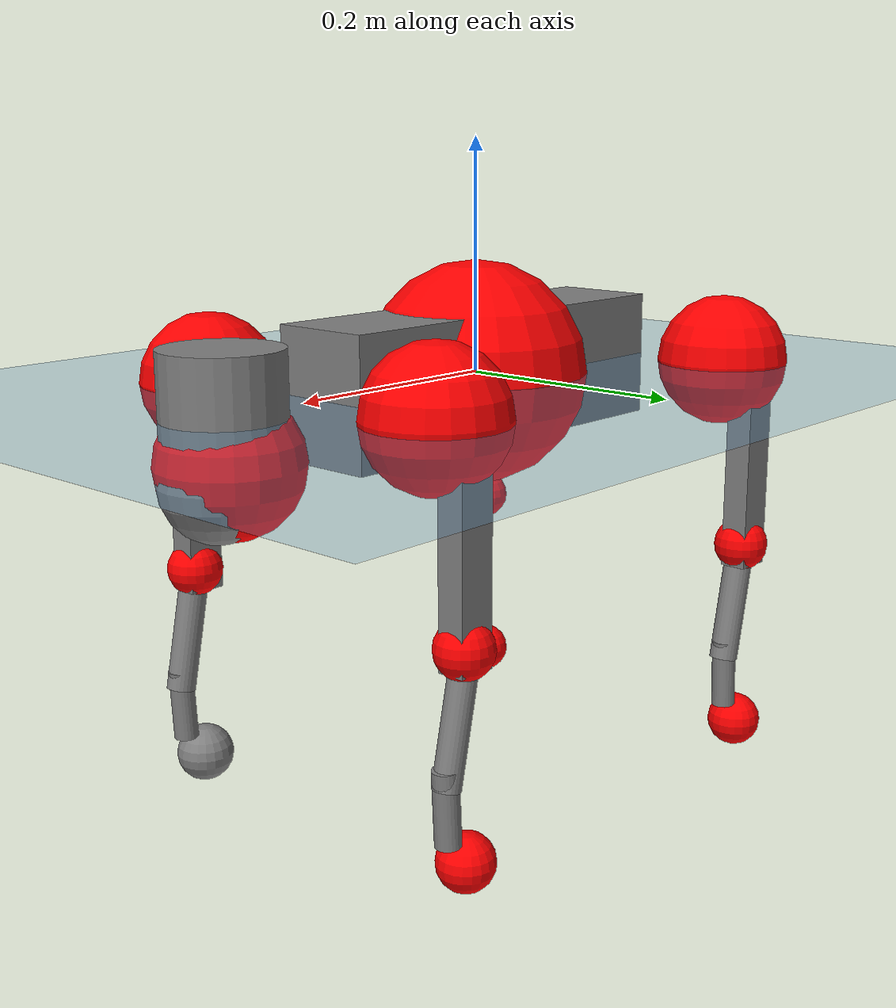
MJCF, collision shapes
<mujoco model="go2">
  <compiler angle="radian" assetdir="assets" balanceinertia="true" inertiafromgeom="false"/>

  <option timestep="0.005" density="1.2" viscosity="2e-05"/>

  <size nkey="1"/>

  <visual>
    <quality shadowsize="8192"/>
    <map shadowclip="0.5"/>
  </visual>

  <default>
    <default class="/">
      <geom contype="0" conaffinity="0" group="1" solref="-1000 -80"/>
      <site size="0.01 0.005 0.005" group="5"/>
      <general forcelimited="true" biastype="affine" gainprm="20" biasprm="0 -20 -0.5"/>
      <default class="go2">
        <joint armature="0.01" damping="0.01" frictionloss="0.2"/>
        <geom condim="1" margin="0.001"/>
        <default class="visual">
          <geom type="mesh" group="2"/>
        </default>
        <default class="collision">
          <geom group="3"/>
          <default class="foot">
            <geom size="0.022 0 0" condim="6" priority="1" friction="0.8 0.02 0.01" solimp="0.015 1 0.022"/>
          </default>
        </default>
        <default class="reward_collision_sphere">
          <geom group="5" rgba="1 0 0 1"/>
        </default>
      </default>
    </default>
  </default>

  <asset>
    <texture type="skybox" colorspace="auto" name="//unnamed_texture_0" builtin="gradient" rgb1="0.95 0.95 0.95" rgb2="0.95 0.95 0.95" width="100" height="600"/>
    <texture type="2d" colorspace="auto" name="texplane" builtin="checker" rgb1="0.345 0.575 0.748" rgb2="0.345 0.575 0.748" markrgb="1 1 1" width="512" height="512"/>
    <material name="MatPlane" class="/" texture="texplane" texuniform="true" texrepeat="2 2" specular="0.9"/>
    <material name="metal" class="/" rgba="0.9 0.95 0.95 1"/>
    <material name="black" class="/" rgba="0 0 0 1"/>
    <material name="white" class="/"/>
    <material name="gray" class="/" rgba="0.671705 0.692426 0.77427 1"/>
    <mesh name="base_0" class="/" file="base_0.obj"/>
    <mesh name="base_1" class="/" file="base_1.obj"/>
    <mesh name="base_2" class="/" file="base_2.obj"/>
    <mesh name="base_3" class="/" file="base_3.obj"/>
    <mesh name="base_4" class="/" file="base_4.obj"/>
    <mesh name="hip_0" class="/" file="hip_0.obj"/>
    <mesh name="hip_1" class="/" file="hip_1.obj"/>
    <mesh name="thigh_0" class="/" file="thigh_0.obj"/>
    <mesh name="thigh_1" class="/" file="thigh_1.obj"/>
    <mesh name="thigh_mirror_0" class="/" file="thigh_mirror_0.obj"/>
    <mesh name="thigh_mirror_1" class="/" file="thigh_mirror_1.obj"/>
    <mesh name="calf_0" class="/" file="calf_0.obj"/>
    <mesh name="calf_1" class="/" file="calf_1.obj"/>
    <mesh name="calf_mirror_0" class="/" file="calf_mirror_0.obj"/>
    <mesh name="calf_mirror_1" class="/" file="calf_mirror_1.obj"/>
    <mesh name="foot" class="/" file="foot.obj"/>
  </asset>

  <worldbody>
    <geom name="floor" class="/" size="100 100 0.125" type="plane" group="0" material="MatPlane"/>
    <light name="toplight_shadow" class="/" pos="0 0 5" dir="0.0990148 0.0990148 -0.990148" type="directional" ambient="0.04 0.04 0.04" diffuse="0.55 0.55 0.55" specular="0.12 0.12 0.12"/>
    <light name="toplight_fill" class="/" pos="0 0 5" dir="0.0990148 0.0990148 -0.990148" type="directional" castshadow="false" ambient="0.04 0.04 0.04" diffuse="0.3 0.3 0.3" specular="0.08 0.08 0.08"/>
    <body name="trunk" childclass="go2" pos="-0.0025356 -0.00252208 -0.000462652" quat="0.999999 -0.000251485 -0.00100896 -0.000928314">
      <inertial pos="0.0181414 0.000270801 -0.00493744" quat="0.00054126 0.714352 -0.00260607 0.699782" mass="6.28592" diaginertia="0.0951982 0.173227 0.00912831"/>
      <joint name="//unnamed_joint_0" type="free" armature="0" damping="0" frictionloss="0"/>
      <geom name="//unnamed_geom_1" class="visual" material="black" mesh="base_0"/>
      <geom name="//unnamed_geom_2" class="visual" material="black" mesh="base_1"/>
      <geom name="//unnamed_geom_3" class="visual" material="black" mesh="base_2"/>
      <geom name="//unnamed_geom_4" class="visual" material="white" mesh="base_3"/>
      <geom name="//unnamed_geom_5" class="visual" material="gray" mesh="base_4"/>
      <geom name="trunk_1" class="collision" size="0.18291 0.04546 0.0554272" type="box"/>
      <geom name="trunk_2" class="collision" size="0.0486203 0.0437583" pos="0.278461 0 0.00816756" type="cylinder"/>
      <geom name="trunk_3" class="collision" size="0.0457031" pos="0.286277 0 -0.0490053"/>
      <geom name="//unnamed_geom_9" class="reward_collision_sphere" size="0.0972407"/>
      <geom name="//unnamed_geom_10" class="reward_collision_sphere" size="0.0583444" pos="0.273576 0 -0.036754"/>
      <site name="imu" pos="-0.0225616 0.00104473 0.0374866" size="0.00972407"/>
      <camera name="track" pos="0 -2.24682 0" quat="0.707107 0.707107 0 0" mode="trackcom"/>
      <camera name="ego_camera" pos="0.304841 0 0.036754" quat="-0.5 -0.5 0.5 0.5"/>
      <body name="FL_hip" pos="0.186533 0.0502781 0.0031455" quat="0.999999 -0.000448543 -0.000217554 -0.00105445">
        <inertial pos="-0.00759302 0.00105724 -0.00182942" quat="0.497142 0.499314 0.505411 0.498091" mass="0.65288" diaginertia="0.000825454 0.00106683 0.000184377"/>
        <joint name="FL_hip_joint" pos="0 0 0" axis="0.999978 0.00145954 0.00646763" stiffness="0.000845851" range="-1.04585 0.992336" armature="0.0110495" damping="0" frictionloss="0.201761"/>
        <geom name="//unnamed_geom_11" class="visual" material="metal" mesh="hip_0"/>
        <geom name="//unnamed_geom_12" class="visual" material="gray" mesh="hip_1"/>
        <geom name="//unnamed_geom_13" class="collision" size="0.0447307 0.0194481" pos="0 0.0898727 0" quat="0.707107 0.707107 0 0" type="cylinder"/>
        <geom name="//unnamed_geom_14" class="reward_collision_sphere" size="0.0583444" pos="0 0.0786386 0"/>
        <body name="FL_thigh" pos="-0.000604569 0.106748 0.00298287" quat="1 0.000130194 2.06096e-05 -3.60549e-06">
          <inertial pos="-0.00116917 -0.025725 -0.0239266" quat="0.829129 0.0844429 -0.0192847 0.552307" mass="1.07015" diaginertia="0.00534043 0.0103807 0.000318136"/>
          <joint name="FL_thigh_joint" pos="0 0 0" axis="-0.0113611 0.999929 -0.00367534" stiffness="0.00960851" range="-1.62319 3.54661" armature="0.011086" damping="0" frictionloss="0.207495"/>
          <geom name="//unnamed_geom_15" class="visual" material="metal" mesh="thigh_0"/>
          <geom name="//unnamed_geom_16" class="visual" material="gray" mesh="thigh_1"/>
          <geom name="//unnamed_geom_17" class="collision" size="0.103561 0.011912 0.0165309" pos="0 0 -0.0869845" quat="0.707107 0 0.707107 0" type="box"/>
          <body name="FL_calf" pos="2.69594e-06 -0.00094831 -0.17397" quat="0.999999 -0.000305707 0.000666667 0.00078603">
            <inertial pos="0.00813233 0.00120382 -0.117981" quat="0.701732 0.00183792 -0.0103866 0.712363" mass="0.220102" diaginertia="0.00132662 0.00266104 1.87079e-05"/>
            <joint name="FL_calf_joint" pos="0 0 0" axis="-0.000336515 0.999998 -0.00188855" range="-2.70575 -0.893187" armature="0.00880133" damping="0.00258392" frictionloss="0.204365"/>
            <geom name="//unnamed_geom_18" class="visual" material="gray" mesh="calf_0"/>
            <geom name="//unnamed_geom_19" class="visual" material="black" mesh="calf_1"/>
            <geom name="FL_calf0" class="collision" size="0.0116689 0.0583444" pos="0.00781645 0 -0.0490053" quat="0.994493 0 -0.104807 0" type="cylinder"/>
            <geom name="//unnamed_geom_21" class="collision" size="0.0106965 0.0316032" pos="0.0195411 0 -0.12088" quat="0.999688 0 0.0249974 0" type="cylinder"/>
            <geom name="//unnamed_geom_22" class="visual" pos="0 0 -0.173969" quat="1 0 0 0" material="black" mesh="foot"/>
            <geom name="FL_foot" class="foot" size="0.0178771" pos="-0.00195411 0 -0.173969"/>
            <geom name="//unnamed_geom_24" class="reward_collision_sphere" size="0.0243102"/>
            <geom name="//unnamed_geom_25" class="reward_collision_sphere" size="0.0243102" pos="-0.00195411 0 -0.173969"/>
            <site name="FL_foot" class="foot" pos="-0.00195411 0 -0.173969" size="0.00972407"/>
          </body>
        </body>
      </body>
      <body name="FR_hip" pos="0.190334 -0.0494821 0.000690189" quat="1 5.38693e-06 0.00010446 -7.77054e-05">
        <inertial pos="-0.00235807 -0.00281582 -0.000108807" quat="0.498846 0.504899 0.498987 0.497234" mass="0.657777" diaginertia="0.000822448 0.00111297 0.000174909"/>
        <joint name="FR_hip_joint" pos="0 0 0" axis="1 -0.000643916 0.000180933" range="-1.01188 1.04638" armature="0.00859236" damping="0.0132453" frictionloss="0.218769"/>
        <geom name="//unnamed_geom_26" class="visual" pos="0 2.67143e-09 1.14583e-07" quat="4.63268e-05 1 0 0" material="metal" mesh="hip_0"/>
        <geom name="//unnamed_geom_27" class="visual" pos="0 4.33071e-09 -2.83408e-07" quat="4.63268e-05 1 0 0" material="gray" mesh="hip_1"/>
        <geom name="//unnamed_geom_28" class="collision" size="0.0447307 0.0194481" pos="0 -0.0898727 0" quat="0.707107 0.707107 0 0" type="cylinder"/>
        <geom name="//unnamed_geom_29" class="reward_collision_sphere" size="0.0583444" pos="0 -0.0786386 0"/>
        <body name="FR_thigh" pos="0.000623847 -0.106141 0.00313242" quat="0.999999 0.000317701 0.000631444 -0.00120779">
          <inertial pos="-0.00606074 0.0228021 -0.0261836" quat="0.555606 -0.0201812 0.0858138 0.826759" mass="1.02716" diaginertia="0.0053021 0.0103135 0.000307538"/>
          <joint name="FR_thigh_joint" pos="0 0 0" axis="0.00389403 -0.999985 -0.00394941" stiffness="0.00255406" range="-3.48299 1.55873" armature="0.009763" damping="0.0188284" frictionloss="0.202327"/>
          <geom name="//unnamed_geom_30" class="visual" material="metal" mesh="thigh_mirror_0"/>
          <geom name="//unnamed_geom_31" class="visual" material="gray" mesh="thigh_mirror_1"/>
          <geom name="//unnamed_geom_32" class="collision" size="0.103561 0.011912 0.0165309" pos="0 0 -0.0869845" quat="0.707107 0 0.707107 0" type="box"/>
          <body name="FR_calf" pos="0.00214231 -0.00175782 -0.172587" quat="1 -0.000117373 -5.67984e-05 -0.00011015">
            <inertial pos="0.00772931 0.00113474 -0.115352" quat="0.706883 -0.00600878 0.00116544 0.707304" mass="0.227862" diaginertia="0.00142133 0.00262227 2.00421e-05"/>
            <joint name="FR_calf_joint" pos="0 0 0" axis="0.0100706 -0.999948 -0.00158833" range="0.833461 2.72746" armature="0.00968594" damping="0.0189438" frictionloss="0.187164"/>
            <geom name="//unnamed_geom_33" class="visual" material="gray" mesh="calf_mirror_0"/>
            <geom name="//unnamed_geom_34" class="visual" material="black" mesh="calf_mirror_1"/>
            <geom name="FR_calf0" class="collision" size="0.0126413 0.0583444" pos="0.00977056 0 -0.0490053" quat="0.995004 0 -0.0998334 0" type="cylinder"/>
            <geom name="//unnamed_geom_36" class="collision" size="0.0106965 0.0316032" pos="0.0195411 0 -0.12088" quat="0.999688 0 0.0249974 0" type="cylinder"/>
            <geom name="//unnamed_geom_37" class="visual" pos="0 0 -0.173969" quat="1 0 0 0" material="black" mesh="foot"/>
            <geom name="FR_foot" class="foot" size="0.0252715" pos="-0.00195411 0 -0.173969"/>
            <geom name="//unnamed_geom_39" class="reward_collision_sphere" size="0.0243102"/>
            <geom name="//unnamed_geom_40" class="reward_collision_sphere" size="0.0243102" pos="-0.00195411 0 -0.173969"/>
            <site name="FR_foot" class="foot" pos="-0.00195411 0 -0.173969" size="0.00972407"/>
          </body>
        </body>
      </body>
      <body name="RL_hip" pos="-0.189407 0.0526261 0.00231797" quat="1 -0.000888896 -3.64618e-06 0.000240729">
        <inertial pos="0.0080754 0.00346047 -0.00109164" quat="0.505418 0.497995 0.496999 0.499545" mass="0.617237" diaginertia="0.000787122 0.0011033 0.000176253"/>
        <joint name="RL_hip_joint" pos="0 0 0" axis="-0.999847 -0.0157913 0.00747944" stiffness="0.0101344" range="-1.02287 1.02599" armature="0.00980074" damping="0.00865239" frictionloss="0.198102"/>
        <geom name="//unnamed_geom_41" class="visual" pos="-1.39647e-09 0 -2.7374e-07" quat="4.63268e-05 0 1 0" material="metal" mesh="hip_0"/>
        <geom name="//unnamed_geom_42" class="visual" pos="-2.26385e-09 0 -2.42769e-07" quat="4.63268e-05 0 1 0" material="gray" mesh="hip_1"/>
        <geom name="//unnamed_geom_43" class="collision" size="0.0447307 0.0194481" pos="0 0.0898727 0" quat="0.707107 0.707107 0 0" type="cylinder"/>
        <geom name="//unnamed_geom_44" class="reward_collision_sphere" size="0.0583444" pos="0 0.0786386 0"/>
        <body name="RL_thigh" pos="-0.00223379 0.108182 0.00242928" quat="0.999999 0.000245296 -0.000841357 -0.00087401">
          <inertial pos="-0.00393207 -0.0237104 -0.0257145" quat="0.828832 0.0936781 -0.0307127 0.550744" mass="1.02113" diaginertia="0.00526033 0.0100832 0.000318826"/>
          <joint name="RL_thigh_joint" pos="0 0 0" axis="-0.00493682 0.99988 0.0146808" range="-0.503108 4.54251" armature="0.00867563" damping="0" frictionloss="0.193637"/>
          <geom name="//unnamed_geom_45" class="visual" material="metal" mesh="thigh_0"/>
          <geom name="//unnamed_geom_46" class="visual" material="gray" mesh="thigh_1"/>
          <geom name="//unnamed_geom_47" class="collision" size="0.103561 0.011912 0.0165309" pos="0 0 -0.0869845" quat="0.707107 0 0.707107 0" type="box"/>
          <body name="RL_calf" pos="-0.000193882 -0.00224785 -0.172162" quat="1 -4.24577e-05 5.53163e-05 0.000174252">
            <inertial pos="0.00601317 -0.000629579 -0.1136" quat="0.711562 0.00183076 -0.00437585 0.702608" mass="0.220909" diaginertia="0.00133169 0.00263691 1.93618e-05"/>
            <joint name="RL_calf_joint" pos="0 0 0" axis="0.0018127 0.999994 0.00309329" range="-2.70993 -0.833776" armature="0.00935833" damping="0" frictionloss="0.189696"/>
            <geom name="//unnamed_geom_48" class="visual" material="gray" mesh="calf_0"/>
            <geom name="//unnamed_geom_49" class="visual" material="black" mesh="calf_1"/>
            <geom name="RL_calf0" class="collision" size="0.0126413 0.0583444" pos="0.00977056 0 -0.0490053" quat="0.995004 0 -0.0998334 0" type="cylinder"/>
            <geom name="//unnamed_geom_51" class="collision" size="0.0106965 0.0316032" pos="0.0195411 0 -0.12088" quat="0.999688 0 0.0249974 0" type="cylinder"/>
            <geom name="//unnamed_geom_52" class="visual" pos="0 0 -0.173969" quat="1 0 0 0" material="black" mesh="foot"/>
            <geom name="RL_foot" class="foot" size="0.0213609" pos="-0.00195411 0 -0.173969"/>
            <geom name="//unnamed_geom_54" class="reward_collision_sphere" size="0.0243102"/>
            <geom name="//unnamed_geom_55" class="reward_collision_sphere" size="0.0243102" pos="-0.00195411 0 -0.173969"/>
            <site name="RL_foot" class="foot" pos="-0.00195411 0 -0.173969" size="0.00972407"/>
          </body>
        </body>
      </body>
      <body name="RR_hip" pos="-0.188213 -0.0542454 0.00126522" quat="0.999999 -0.000704095 -2.88197e-05 -0.00116632">
        <inertial pos="0.00544601 0.00071647 -0.000444325" quat="0.502081 0.485818 0.505441 0.506384" mass="0.619958" diaginertia="0.000800511 0.00108841 0.000172072"/>
        <joint name="RR_hip_joint" pos="0 0 0" axis="-0.999969 0.00781003 0.000464817" stiffness="0.00818339" range="-1.06873 1.04715" armature="0.0111082" damping="0.0178197" frictionloss="0.167279"/>
        <geom name="//unnamed_geom_56" class="visual" pos="1.40154e-09 2.67143e-09 -3.88324e-07" quat="2.14617e-09 4.63268e-05 4.63268e-05 -1" material="metal" mesh="hip_0"/>
        <geom name="//unnamed_geom_57" class="visual" pos="2.25131e-09 4.33071e-09 4.06396e-08" quat="2.14617e-09 4.63268e-05 4.63268e-05 -1" material="gray" mesh="hip_1"/>
        <geom name="//unnamed_geom_58" class="collision" size="0.0447307 0.0194481" pos="0 -0.0898727 0" quat="0.707107 0.707107 0 0" type="cylinder"/>
        <geom name="//unnamed_geom_59" class="reward_collision_sphere" size="0.0583444" pos="0 -0.0786386 0"/>
        <body name="RR_thigh" pos="-0.00150381 -0.108338 -0.00298678" quat="1 0.00043194 0.000720417 -0.000190508">
          <inertial pos="-0.00321259 0.0238953 -0.0266099" quat="0.551535 -0.0202714 0.084536 0.829609" mass="1.03899" diaginertia="0.00523304 0.0104017 0.000307382"/>
          <joint name="RR_thigh_joint" pos="0 0 0" axis="-0.00323413 -0.999991 0.00279756" range="-4.59163 0.567347" armature="0.0105325" damping="0.0175058" frictionloss="0.200574"/>
          <geom name="//unnamed_geom_60" class="visual" material="metal" mesh="thigh_mirror_0"/>
          <geom name="//unnamed_geom_61" class="visual" material="gray" mesh="thigh_mirror_1"/>
          <geom name="//unnamed_geom_62" class="collision" size="0.103561 0.011912 0.0165309" pos="0 0 -0.0869845" quat="0.707107 0 0.707107 0" type="box"/>
          <body name="RR_calf" pos="-0.0020747 0.00171373 -0.173412" quat="1 -0.000344323 0.000506221 -0.000345798">
            <inertial pos="0.00811279 0.000801297 -0.11402" quat="0.703911 -0.00523386 0.00364319 0.71026" mass="0.22128" diaginertia="0.00131423 0.002456 1.92831e-05"/>
            <joint name="RR_calf_joint" pos="0 0 0" axis="-0.00666127 -0.999945 -0.00815417" range="0.890412 2.76492" armature="0.00825849" damping="0.00950093" frictionloss="0.188641"/>
            <geom name="//unnamed_geom_63" class="visual" material="gray" mesh="calf_mirror_0"/>
            <geom name="//unnamed_geom_64" class="visual" material="black" mesh="calf_mirror_1"/>
            <geom name="RR_calf0" class="collision" size="0.0126413 0.0583444" pos="0.00977056 0 -0.0490053" quat="0.995004 0 -0.0998334 0" type="cylinder"/>
            <geom name="//unnamed_geom_66" class="collision" size="0.0106965 0.0316032" pos="0.0195411 0 -0.12088" quat="0.999688 0 0.0249974 0" type="cylinder"/>
            <geom name="//unnamed_geom_67" class="visual" pos="0 0 -0.173969" quat="1 0 0 0" material="black" mesh="foot"/>
            <geom name="RR_foot" class="foot" size="0.0232299" pos="-0.00195411 0 -0.173969"/>
            <geom name="//unnamed_geom_69" class="reward_collision_sphere" size="0.0243102"/>
            <geom name="//unnamed_geom_70" class="reward_collision_sphere" size="0.0243102" pos="-0.00195411 0 -0.173969"/>
            <site name="RR_foot" class="foot" pos="-0.00195411 0 -0.173969" size="0.00972407"/>
          </body>
        </body>
      </body>
    </body>
  </worldbody>

  <contact>
    <pair class="/" geom1="floor" geom2="FL_foot" name="//unnamed_contact_0"/>
    <pair class="/" geom1="floor" geom2="FR_foot" name="//unnamed_contact_1"/>
    <pair class="/" geom1="floor" geom2="RL_foot" name="//unnamed_contact_2"/>
    <pair class="/" geom1="floor" geom2="RR_foot" name="//unnamed_contact_3"/>
  </contact>

  <actuator>
    <general name="FL_hip" class="/" joint="FL_hip_joint" forcerange="-23.265 23.265" gainprm="19.6226" biasprm="0 -19.6226 -0.489624"/>
    <general name="FL_thigh" class="/" joint="FL_thigh_joint" forcerange="-21.7599 21.7599" gainprm="19.6226" biasprm="0 -19.6226 -0.489624"/>
    <general name="FL_calf" class="/" joint="FL_calf_joint" forcerange="-43.497 43.497" gainprm="19.6226" biasprm="0 -19.6226 -0.489624"/>
    <general name="FR_hip" class="/" joint="FR_hip_joint" forcerange="-24.9063 24.9063" gainprm="19.6226" biasprm="0 -19.6226 -0.489624"/>
    <general name="FR_thigh" class="/" joint="FR_thigh_joint" forcerange="-23.1357 23.1357" gainprm="19.6226" biasprm="0 -19.6226 -0.489624"/>
    <general name="FR_calf" class="/" joint="FR_calf_joint" forcerange="-39.444 39.444" gainprm="19.6226" biasprm="0 -19.6226 -0.489624"/>
    <general name="RL_hip" class="/" joint="RL_hip_joint" forcerange="-23.7195 23.7195" gainprm="19.6226" biasprm="0 -19.6226 -0.489624"/>
    <general name="RL_thigh" class="/" joint="RL_thigh_joint" forcerange="-23.654 23.654" gainprm="19.6226" biasprm="0 -19.6226 -0.489624"/>
    <general name="RL_calf" class="/" joint="RL_calf_joint" forcerange="-42.4795 42.4795" gainprm="19.6226" biasprm="0 -19.6226 -0.489624"/>
    <general name="RR_hip" class="/" joint="RR_hip_joint" forcerange="-22.2375 22.2375" gainprm="19.6226" biasprm="0 -19.6226 -0.489624"/>
    <general name="RR_thigh" class="/" joint="RR_thigh_joint" forcerange="-23.3013 23.3013" gainprm="19.6226" biasprm="0 -19.6226 -0.489624"/>
    <general name="RR_calf" class="/" joint="RR_calf_joint" forcerange="-48.7305 48.7305" gainprm="19.6226" biasprm="0 -19.6226 -0.489624"/>
  </actuator>

  <sensor>
    <gyro site="imu" name="imu_angular_velocity"/>
    <velocimeter site="imu" name="imu_linear_velocity"/>
    <framelinvel objtype="site" objname="FL_foot" name="FL_foot_global_linear_velocity"/>
    <framelinvel objtype="site" objname="FR_foot" name="FR_foot_global_linear_velocity"/>
    <framelinvel objtype="site" objname="RL_foot" name="RL_foot_global_linear_velocity"/>
    <framelinvel objtype="site" objname="RR_foot" name="RR_foot_global_linear_velocity"/>
  </sensor>

  <keyframe>
    <key name="home" qpos="0 0 0.325 1 0 0 0 0.1 0.8 -1.5 -0.1 -0.8 1.5 -0.1 0.8 -1.5 0.1 -0.8 1.5"/>
  </keyframe>
</mujoco>
